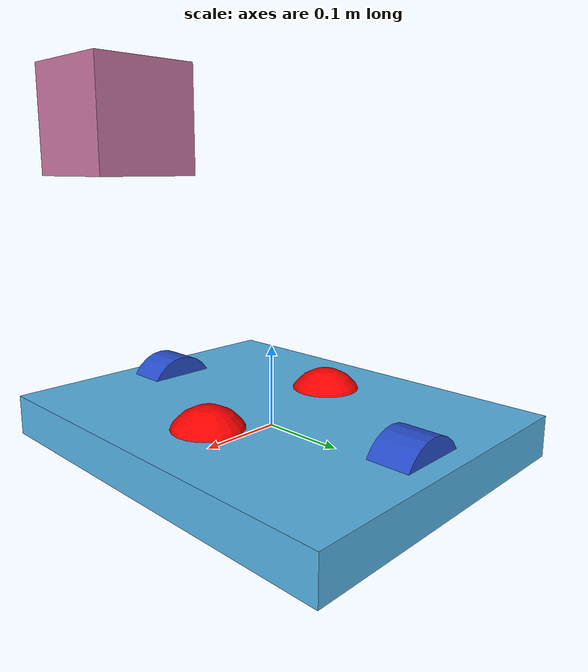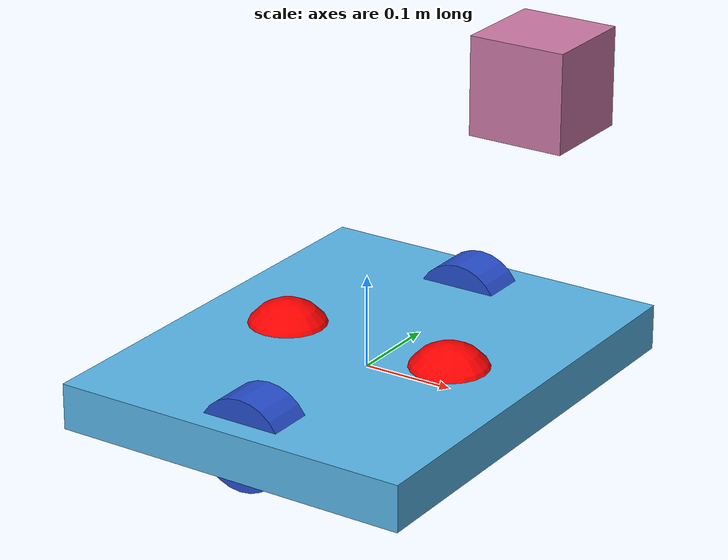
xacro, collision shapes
<?xml version='1.0'?>

<robot name="bot" xmlns:xacro="http://www.ros.org/wiki/xacro">

<link name="base_footprint"/>
  <joint name="base_to_base" type="fixed">
    <parent link="base_footprint"/>
    <child link="base_link"/>
    <origin rpy="0 0 0" xyz="0 0 0"/>
  </joint>

<xacro:property name="camera_link" value="0.01"/>
<xacro:property name="camera_mass" value="0.1"/>

<xacro:include filename="$(find robot1)/urdf/bot.gazebo"/>

  <link name='base_link'>
    <pose>0 0 0 0 0 0</pose>

    <inertial>
      <mass value="1"/>
      <origin xyz="0.0 0 0.0" rpy=" 0 0 0"/>
      <inertia ixx="0.00416" ixy="0" ixz="0" iyy="0.01416" iyz="0" izz="0.0166"/>
    </inertial>

    <collision name='collision'>
    <origin xyz="0.0 0 0.0" rpy=" 0 0 0"/>
      <geometry>
        <box size=".4 .5 .05"/>
      </geometry>
    </collision>

    <visual name='chassis_visual'>
      <origin xyz="-0.205 -0.358 0" rpy="1.57 0 1.57"/>
      <geometry>
        <mesh filename="package://waiter/meshes/marses_robot.stl" scale="0.001 0.001 0.001"/>
      </geometry>
    </visual>

  </link>

<link name="custer_wheel">
    <inertial>
      <origin xyz="0.0 0.0 0.0" rpy="0.0 0.0 0.0"/>
      <mass value="0.1"/>
      <inertia ixx="0.002" ixy="0.0" ixz="0.0" iyy="0.002" iyz="0.0" izz="0.002"/>
    </inertial>

    <visual name="">
      <origin xyz="0.0 0.0 0.0" rpy="0.0 0.0 0.0"/>
      <geometry>
         <sphere radius="0.05"/>
      </geometry>

      <material name="">
        <color rgba="1.0 0.0 0.0 1.0"/>
        <texture filename=""/>
      </material>
    </visual>

    <collision>
      <origin xyz="0.0 0.0 0.0" rpy="0.0 0.0 0.0"/>
      <geometry>
        <sphere radius="0.05"/>
      </geometry>
    </collision>
  </link>

  <joint name="custer_joint" type="fixed">
    <origin xyz="-0.1 0.0 0" rpy="0.0 0.0 0.0"/>
    <parent link="base_link"/>
    <child link="custer_wheel"/>
    <axis xyz="0.0 0.0 0.0"/>
    <limit lower="0.0" upper="0.0" effort="0.0" velocity="0.0"/>
  </joint>

<link name="custer_wheel2">
    <inertial>
      <origin xyz="0.0 0.0 0.0" rpy="0.0 0.0 0.0"/>
      <mass value="0.1"/>
      <inertia ixx="0.002" ixy="0.0" ixz="0.0" iyy="0.002" iyz="0.0" izz="0.002"/>
    </inertial>

    <visual name="">
      <origin xyz="0.0 0.0 0.0" rpy="0.0 0.0 0.0"/>
      <geometry>
         <sphere radius="0.05"/>
      </geometry>

      <material name="">
        <color rgba="1.0 0.0 0.0 1.0"/>
        <texture filename=""/>
      </material>
    </visual>

    <collision>
      <origin xyz="0.0 0.0 0.0" rpy="0.0 0.0 0.0"/>
      <geometry>
        <sphere radius="0.05"/>
      </geometry>
    </collision>
  </link>

  <joint name="custer_joint2" type="fixed">
    <origin xyz="0.1 0.0 0" rpy="0.0 0.0 0.0"/>
    <parent link="base_link"/>
    <child link="custer_wheel2"/>
    <axis xyz="0.0 0.0 0.0"/>
    <limit lower="0.0" upper="0.0" effort="0.0" velocity="0.0"/>
  </joint>

  <link name="left_wheel">
    <!--origin xyz="0.1 0.13 0.1" rpy="0 1.5707 1.5707"/-->
    <collision name="collision">
      <origin xyz="0 0 0" rpy="0 1.5707 1.5707"/>
      <geometry>
        <cylinder radius="0.05" length="0.05"/>
      </geometry>

    </collision>

    <visual name="left_wheel_visual">
      <origin xyz="0 0 0" rpy="0 1.5707 1.5707"/>
      <geometry>
        <cylinder radius="0.05" length="0.05"/>

      </geometry>
    </visual>

    <inertial>
      <origin xyz="0 0 0" rpy="0 1.5707 1.5707"/>
      <mass value="1"/>
      <inertia ixx="0.005" ixy="0" ixz="0" iyy="0.0025" iyz="0" izz="0.0025"/>
    </inertial>

  </link>

  <link name="right_wheel">
    <!--origin xyz="0.1 -0.13 0.1" rpy="0 1.5707 1.5707"/-->
    <collision name="collision">
      <origin xyz="0 0 0" rpy="0 1.5707 1.5707"/>
      <geometry>
        <cylinder radius="0.05" length="0.05"/>
      </geometry>
      <surface>
        <friction>
          <ode>
            <mu>200</mu>
            <mu2>200</mu2>
            <slip1>0</slip1>
            <slip2>0</slip2>
          </ode>
        </friction>
      </surface>
    </collision>
    <visual name="right_wheel_visual">
      <origin xyz="0 0 0" rpy="0 1.5707 1.5707"/>
      <geometry>
        <cylinder radius="0.05" length="0.05"/>
      </geometry>
    </visual>
    <inertial>
      <origin xyz="0 0 0" rpy="0 1.5707 1.5707"/>
      <mass value="1"/>
      <inertia ixx="0.005" ixy="0" ixz="0" iyy="0.0025" iyz="0" izz="0.0025"/>
    </inertial>
  </link>

  <joint type="continuous" name="left_wheel_hinge">
    <origin xyz="0 0.2 0" rpy="0 0 0"/>
    <!--origin xyz="0.1 0.13 0" rpy="0 1.5707 1.5707"/-->
    <child link="left_wheel"/>
    <parent link="base_link"/>
    <axis xyz="0 1 0" rpy="0 0 0"/>
    <joint_properties damping="0.0" friction="0.0"/>
  </joint>

  <joint type="continuous" name="right_wheel_hinge">
    <origin xyz="0 -0.2 0" rpy="0 0 0"/>
    <!--origin xyz="0.1 -0.13 0" rpy="0 1.5707 1.5707"/-->
    <child link="right_wheel"/>
    <parent link="base_link"/>
    <axis xyz="0 1 0" rpy="0 0 0"/>
    <joint_properties damping="0.0" friction="0.0"/>
  </joint>

  <!-- Hokuyo Laser -->
  <link name="base_scan">
    <collision>
      <origin xyz="0 0 0" rpy="0 0 0"/>
      <geometry>
    <box size="0.1 0.1 0.1"/>
      </geometry>
    </collision>

    <visual>
      <origin xyz="0 0 0" rpy="0 0 0"/>
      <geometry>
        <mesh filename="package://waiter/meshes/hokuyo.dae"/>
      </geometry>
    </visual>

    <inertial>
      <mass value="1e-5" />
      <origin xyz="0 0 0" rpy="0 0 0"/>
      <inertia ixx="1e-6" ixy="0" ixz="0" iyy="1e-6" iyz="0" izz="1e-6" />
    </inertial>
  </link>

  <joint name="hokuyo_joint" type="fixed">
    <axis xyz="0 1 0" />
    <origin xyz="0.2 0 0.35" rpy="0 0 0"/>
    <parent link="base_link"/>
    <child link="base_scan"/>
  </joint>
</robot>
